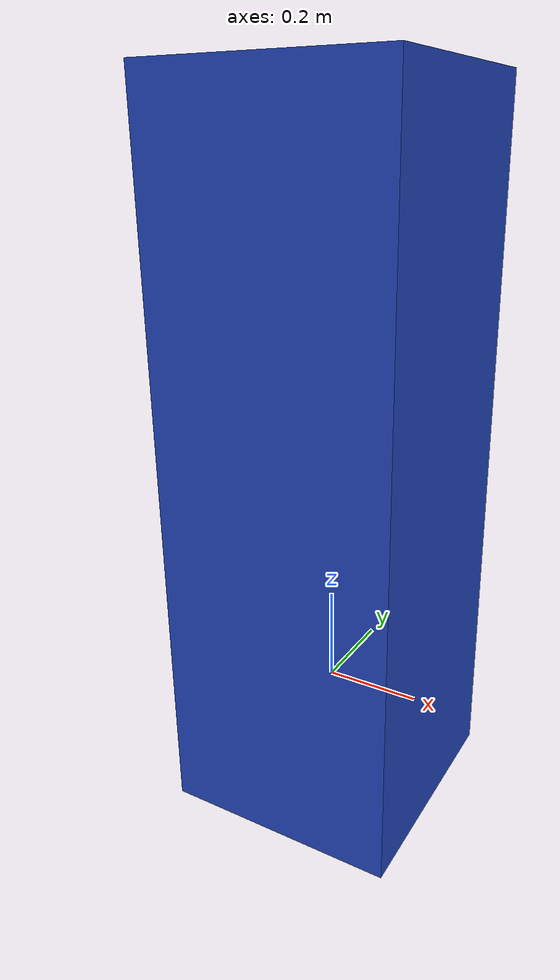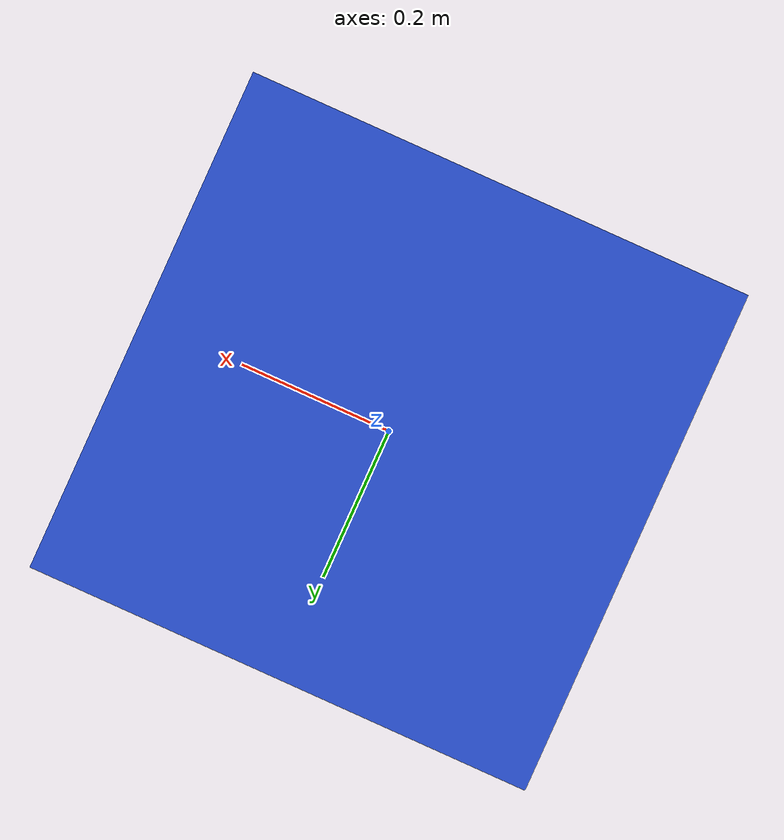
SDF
<?xml version="1.0" ?>
<sdf version="1.4">
  <model name="moving_cube">
    <link name="base_link">
      <gravity>false</gravity>
      <inertial>
        <mass> 50 </mass>
        <inertia>
	  <ixx>50</ixx>
	  <ixy>0</ixy>
	  <ixz>0</ixz>
	  <iyy>50</iyy>
	  <izz>50</izz>
        </inertia>
      </inertial>
      <visual name="visual">
        <pose>0 0 0.5 0 0 0 </pose>
        <geometry>
 	  <box>
            <size> 0.5 0.5 1.5 </size>
	  </box>
        </geometry>
        <material>
          <script>
            <uri>file://media/materials/scripts/gazebo.material</uri>
            <name>Gazebo/Blue</name>
          </script>
        </material>
      </visual>
    </link>
    <plugin name="object_controller" filename="libgazebo_ros_planar_move.so">
      <commandTopic>cmd_vel</commandTopic>
      <odometryTopic>world</odometryTopic>
      <odometryFrame>world</odometryFrame>
      <odometryRate>20.0</odometryRate>
      <robotBaseFrame>base_link</robotBaseFrame>
    </plugin>
  </model>
</sdf>
